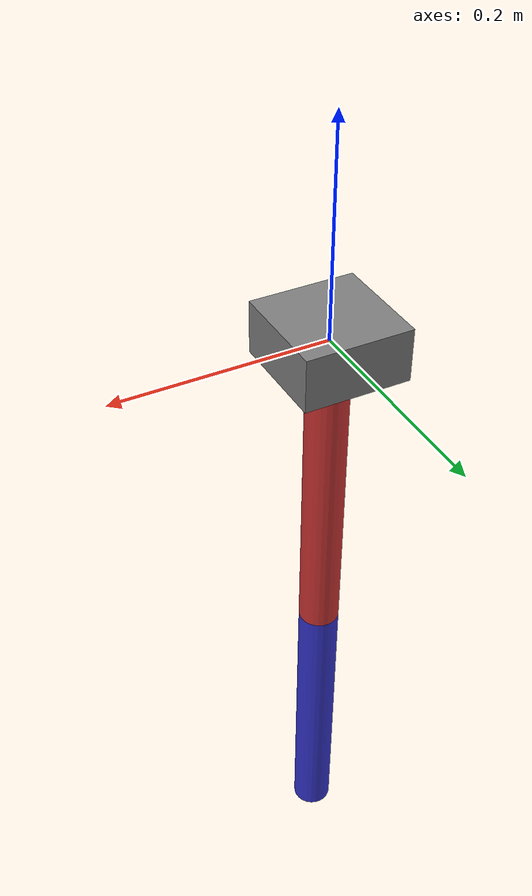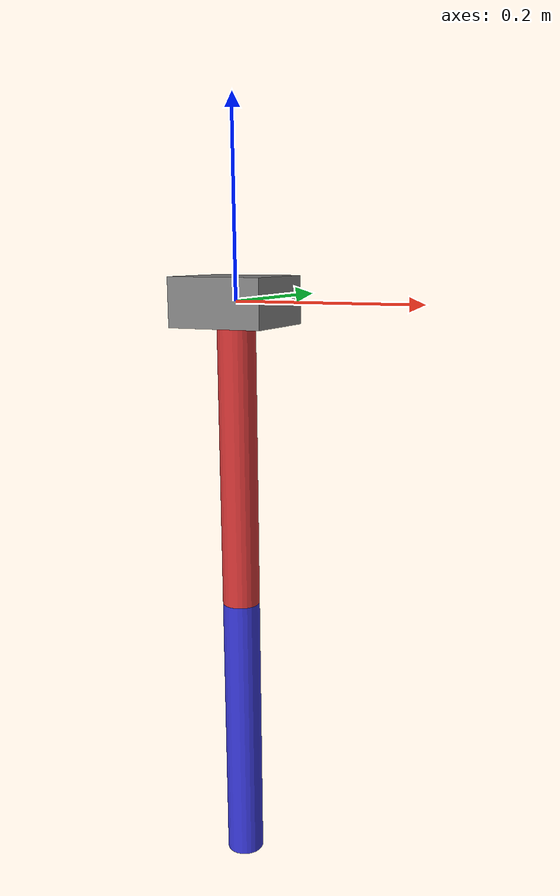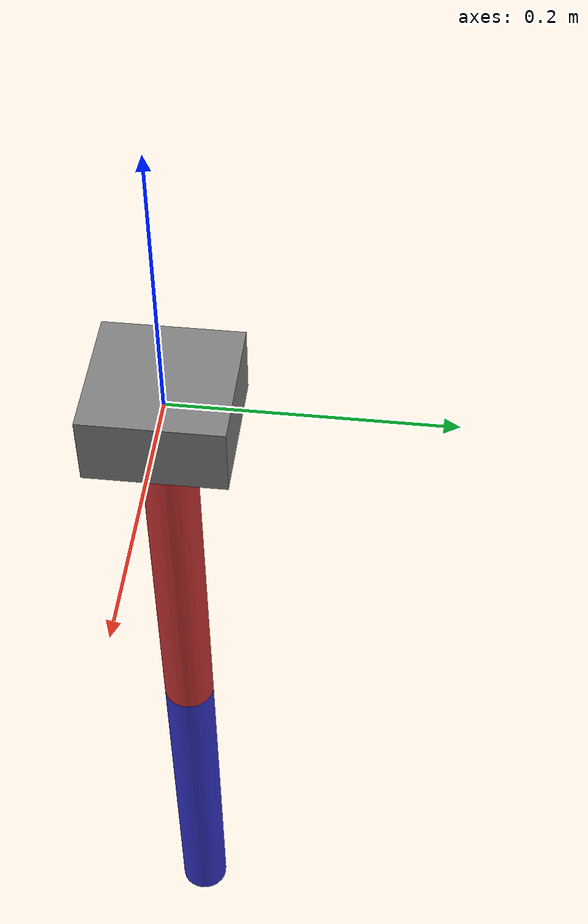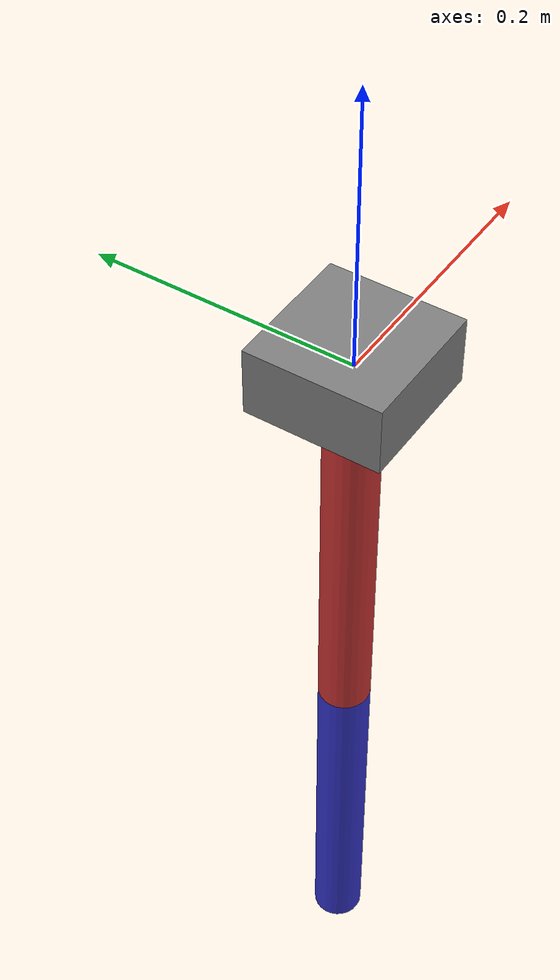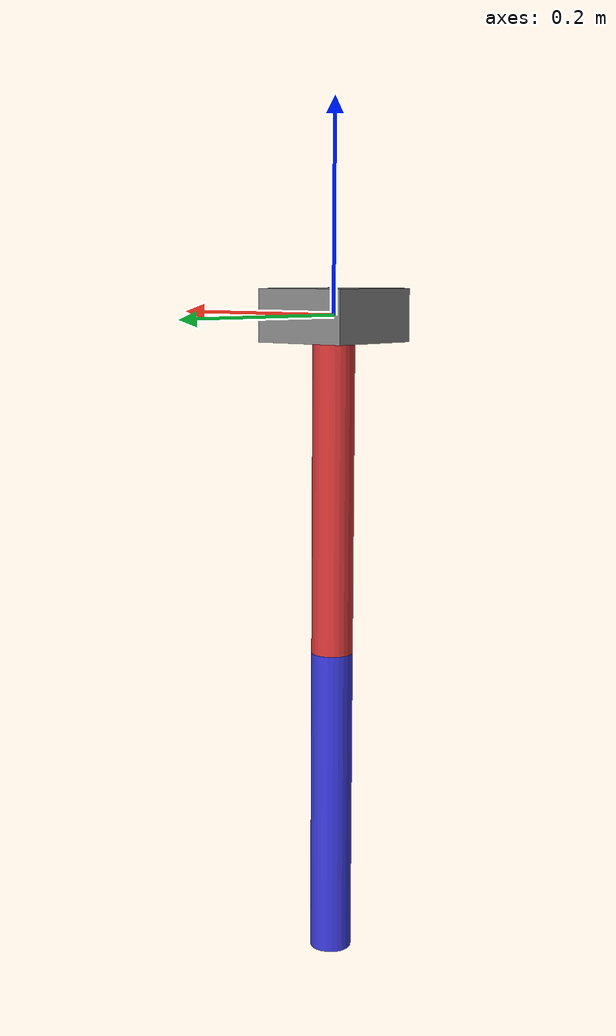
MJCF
<mujoco model="two_link_arm">
  <compiler angle="radian"/>

  <worldbody>
    <body name="base_link">
      <inertial pos="0 0 0" mass="5" diaginertia="0.01 0.01 0.01"/>
      <geom size="0.05 0.05 0.025" type="box" contype="0" conaffinity="0" group="1" density="0"/>
      <body name="upper_arm" pos="0 0 -0.025">
        <inertial pos="0 0 -0.15" mass="1" diaginertia="0.0075 0.0075 0.0002"/>
        <joint name="shoulder" range="-2.618 2.618" actuatorfrcrange="-25 25" damping="0.1" axis="0 1 0"/>
        <geom size="0.02 0.15" pos="0 0 -0.15" type="cylinder" contype="0" conaffinity="0" group="1" rgba="0.8 0.2 0.2 1" density="0"/>
        <geom size="0.02 0.15" pos="0 0 -0.15" type="cylinder" rgba="0.8 0.2 0.2 1"/>
        <body name="forearm" pos="0 0 -0.3">
          <inertial pos="0 0 -0.15" mass="1" diaginertia="0.0075 0.0075 0.0002"/>
          <joint name="elbow" range="-1.047 2.094" actuatorfrcrange="-25 25" damping="0.1" axis="0 1 0"/>
          <geom size="0.02 0.15" pos="0 0 -0.15" type="cylinder" contype="0" conaffinity="0" group="1" rgba="0.2 0.2 0.8 1" density="0"/>
          <geom size="0.02 0.15" pos="0 0 -0.15" type="cylinder" rgba="0.2 0.2 0.8 1"/>
        </body>
      </body>
    </body>
  </worldbody>
</mujoco>
